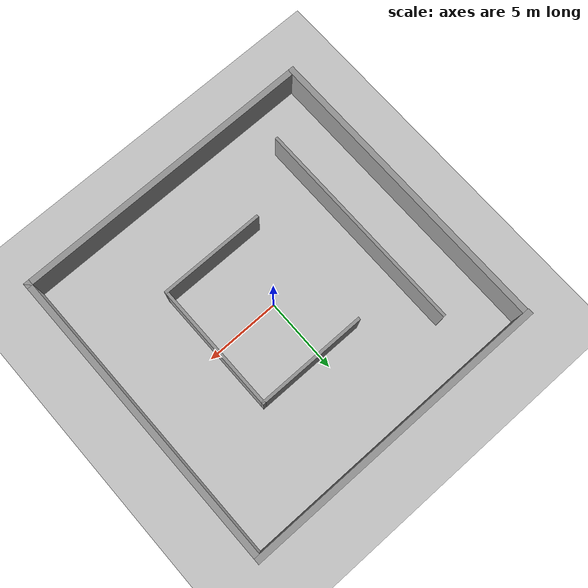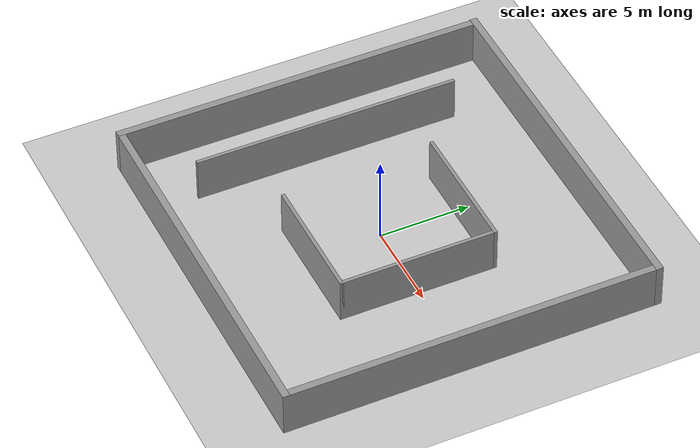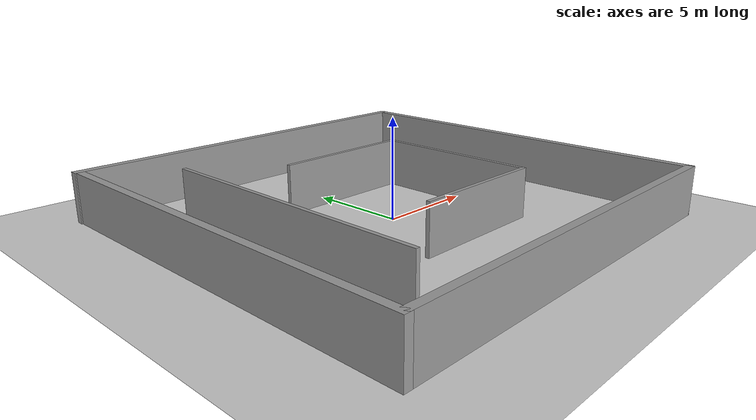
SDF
<sdf version="1.4">
 <world name="__default__">
  <physics type="ode">
   <max_step_size>0.001</max_step_size>
   <real_time_factor>1</real_time_factor>
   <real_time_update_rate>1000</real_time_update_rate>
   <gravity>0 0 -9.8</gravity>
  </physics>
  <scene><ambient>0.4 0.4 0.4 1</ambient><background>0.7 0.7 0.7 1</background><shadows>1</shadows></scene>
  <spherical_coordinates>
   <surface_model>EARTH_WGS84</surface_model>
   <latitude_deg>0</latitude_deg>
   <longitude_deg>0</longitude_deg>
   <elevation>0</elevation>
   <heading_deg>0</heading_deg>
  </spherical_coordinates>
  <model name="ground_plane">
   <static>1</static>
   <link name="link">
    <collision name="collision">
     <geometry><plane><normal>0 0 1</normal><size>100 100</size></plane></geometry>
     <surface><friction><ode><mu>100</mu><mu2>50</mu2></ode></friction></surface>
    </collision>
    <visual name="visual">
     <cast_shadows>0</cast_shadows>
     <geometry><plane><normal>0 0 1</normal><size>100 100</size></plane></geometry>
     <material>
      <script><uri>file://media/materials/scripts/gazebo.material</uri><name>Gazebo/Grey</name></script>
     </material>
    </visual>
    <velocity_decay><linear>0</linear><angular>0</angular></velocity_decay>
   </link>
  </model>
  <model name="test-1m-20px">
   <pose>-9.7731 -9.55226 0 0 -0 0</pose>
   <link name="Wall_10">
    <collision name="Wall_10_Collision">
     <geometry><box><size>20.4 0.4 2.5</size></box></geometry>
     <pose>0 0 1.25 0 -0 0</pose>
    </collision>
    <visual name="Wall_10_Visual">
     <pose>0 0 1.25 0 -0 0</pose>
     <geometry><box><size>20.4 0.4 2.5</size></box></geometry>
     <material>
      <script><uri>file://media/materials/scripts/gazebo.material</uri><name>Gazebo/Grey</name></script>
     </material>
    </visual>
    <velocity_decay><linear>0</linear><angular>0</angular></velocity_decay>
    <pose>20 9.6 0 0 -0 1.5708</pose>
   </link>
   <link name="Wall_15">
    <collision name="Wall_15_Collision">
     <geometry><box><size>20.98 0.4 2.5</size></box></geometry>
     <pose>0 0 1.25 0 -0 0</pose>
    </collision>
    <visual name="Wall_15_Visual">
     <pose>0 0 1.25 0 -0 0</pose>
     <geometry><box><size>20.98 0.4 2.5</size></box></geometry>
     <material>
      <script><uri>file://media/materials/scripts/gazebo.material</uri><name>Gazebo/Grey</name></script>
     </material>
    </visual>
    <velocity_decay><linear>0</linear><angular>0</angular></velocity_decay>
    <pose>9.71 20 0 0 -0 3.14159</pose>
   </link>
   <link name="Wall_19">
    <collision name="Wall_19_Collision">
     <geometry><box><size>7.44089 0.2 2.5</size></box></geometry>
     <pose>0 0 1.25 0 -0 0</pose>
    </collision>
    <visual name="Wall_19_Visual">
     <pose>0 0 1.25 0 -0 0</pose>
     <geometry><box><size>7.44089 0.2 2.5</size></box></geometry>
     <material>
      <script><uri>file://media/materials/scripts/gazebo.material</uri><name>Gazebo/Grey</name></script>
     </material>
    </visual>
    <velocity_decay><linear>0</linear><angular>0</angular></velocity_decay>
    <pose>10.6412 13.7857 0 0 -0 0</pose>
   </link>
   <link name="Wall_2">
    <collision name="Wall_2_Collision">
     <geometry><box><size>20.9 0.4 2.5</size></box></geometry>
     <pose>0 0 1.25 0 -0 0</pose>
    </collision>
    <visual name="Wall_2_Visual">
     <pose>0 0 1.25 0 -0 0</pose>
     <geometry><box><size>20.9 0.4 2.5</size></box></geometry>
     <material>
      <script><uri>file://media/materials/scripts/gazebo.material</uri><name>Gazebo/Grey</name></script>
     </material>
    </visual>
    <velocity_decay><linear>0</linear><angular>0</angular></velocity_decay>
    <pose>9.75 -0.4 0 0 -0 0</pose>
   </link>
   <link name="Wall_20">
    <collision name="Wall_20_Collision">
     <geometry><box><size>8.72772 0.2 2.5</size></box></geometry>
     <pose>0 0 1.25 0 -0 0</pose>
    </collision>
    <visual name="Wall_20_Visual">
     <pose>0 0 1.25 0 -0 0</pose>
     <geometry><box><size>8.72772 0.2 2.5</size></box></geometry>
     <material>
      <script><uri>file://media/materials/scripts/gazebo.material</uri><name>Gazebo/Grey</name></script>
     </material>
    </visual>
    <velocity_decay><linear>0</linear><angular>0</angular></velocity_decay>
    <pose>14.2618 9.52186 0 0 0 -1.57075</pose>
   </link>
   <link name="Wall_21">
    <collision name="Wall_21_Collision">
     <geometry><box><size>7.119 0.2 2.5</size></box></geometry>
     <pose>0 0 1.25 0 -0 0</pose>
    </collision>
    <visual name="Wall_21_Visual">
     <pose>0 0 1.25 0 -0 0</pose>
     <geometry><box><size>7.119 0.2 2.5</size></box></geometry>
     <material>
      <script><uri>file://media/materials/scripts/gazebo.material</uri><name>Gazebo/Grey</name></script>
     </material>
    </visual>
    <velocity_decay><linear>0</linear><angular>0</angular></velocity_decay>
    <pose>10.8025 5.258 0 0 -0 3.14159</pose>
   </link>
   <link name="Wall_23">
    <collision name="Wall_23_Collision">
     <geometry><box><size>14.682 0.2 2.5</size></box></geometry>
     <pose>0 0 1.25 0 -0 0</pose>
    </collision>
    <visual name="Wall_23_Visual">
     <pose>0 0 1.25 0 -0 0</pose>
     <geometry><box><size>14.682 0.2 2.5</size></box></geometry>
     <material>
      <script><uri>file://media/materials/scripts/gazebo.material</uri><name>Gazebo/Grey</name></script>
     </material>
    </visual>
    <velocity_decay><linear>0</linear><angular>0</angular></velocity_decay>
    <pose>3.159 9.602 0 0 0 -1.5708</pose>
   </link>
   <link name="Wall_7">
    <collision name="Wall_7_Collision">
     <geometry><box><size>20.4 0.4 2.5</size></box></geometry>
     <pose>0 0 1.25 0 -0 0</pose>
    </collision>
    <visual name="Wall_7_Visual">
     <pose>0 0 1.25 0 -0 0</pose>
     <geometry><box><size>20.4 0.4 2.5</size></box></geometry>
     <material>
      <script><uri>file://media/materials/scripts/gazebo.material</uri><name>Gazebo/Grey</name></script>
     </material>
    </visual>
    <velocity_decay><linear>0</linear><angular>0</angular></velocity_decay>
    <pose>-0.527 9.599 0 0 -0 1.5708</pose>
   </link>
   <static>1</static>
  </model>
  <light name="sun" type="directional">
   <pose>4.55416 9 10 0 -0 0</pose>
   <diffuse>0.8 0.8 0.8 1</diffuse>
   <specular>0.2 0.2 0.2 1</specular>
   <attenuation>
    <range>1000</range>
    <constant>0.9</constant>
    <linear>0.01</linear>
    <quadratic>0.001</quadratic>
   </attenuation>
   <direction>-0.5 0.1 -0.9</direction>
  </light>
 </world>
</sdf>
